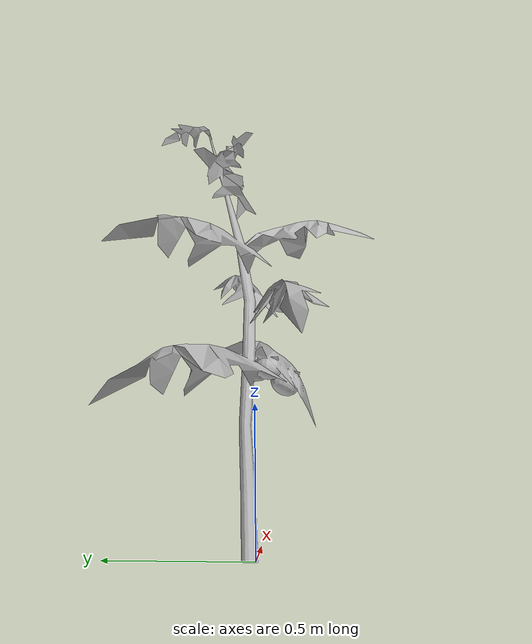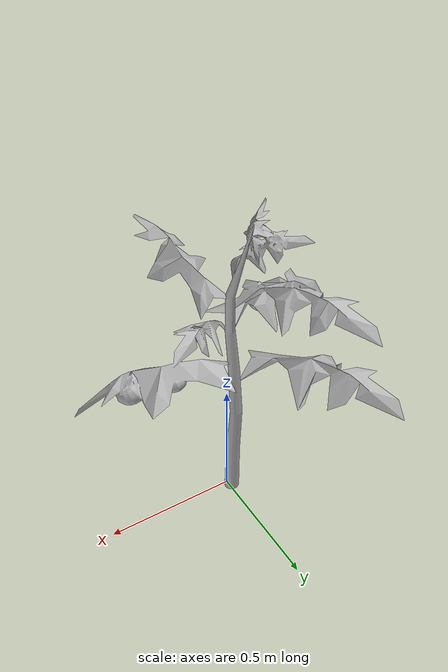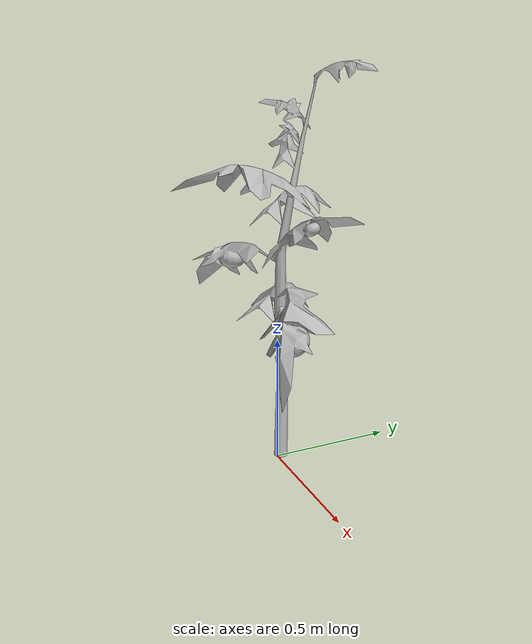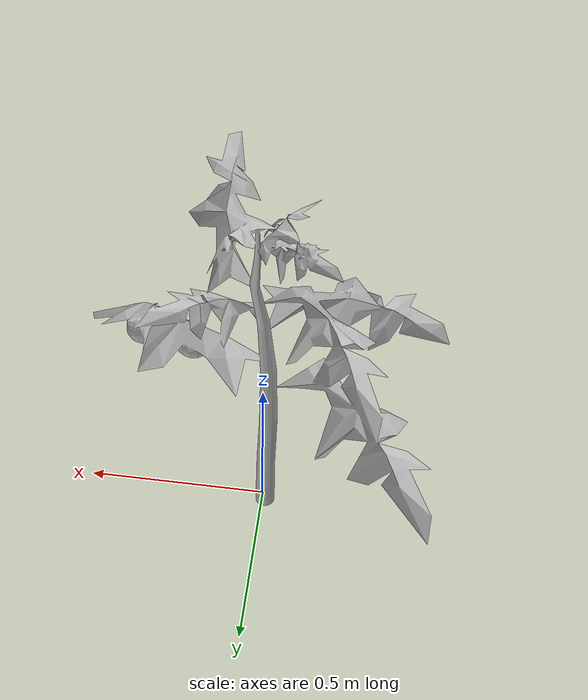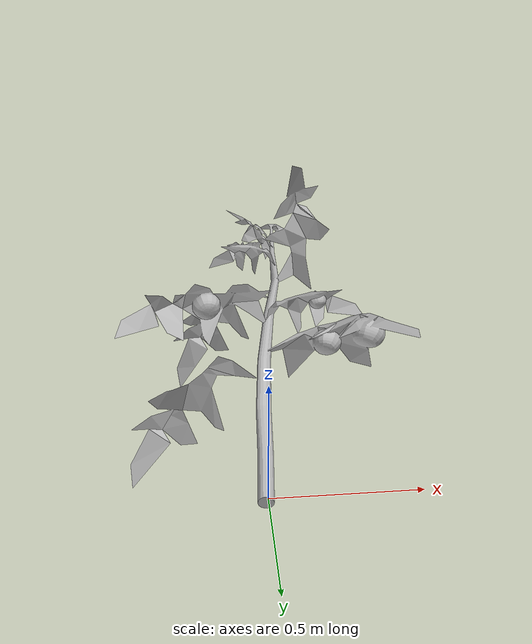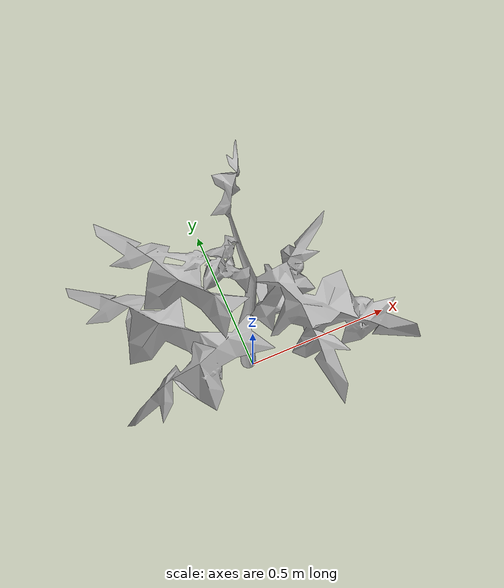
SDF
<?xml version="1.0" ?>
<sdf version="1.6">
  <model name="tomato_plant_small">
    <static>true</static>
    <link name="link">
      <collision name="collision">
        <pose>0 0 0 1.5708 -0 0</pose>
        <geometry>
          <mesh>
            <scale>0.5 0.45 0.5</scale>
            <uri>model://stick/meshes/stick.dae</uri>
          </mesh>
        </geometry>
      </collision>
      <visual name="visual">
        <pose>0 0 0 0 -0 0</pose>
        <geometry>
          <mesh>
            <scale>0.000005 0.000005 0.000005</scale>
            <uri>model://tomato_plant_small/meshes/tomato-plant.dae</uri>
          </mesh>
        </geometry>
      </visual>
    </link>
  </model>
</sdf>
